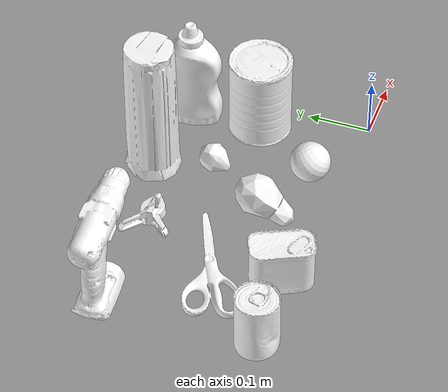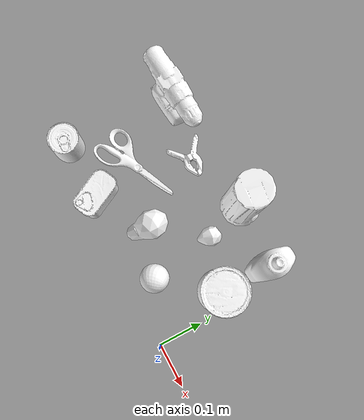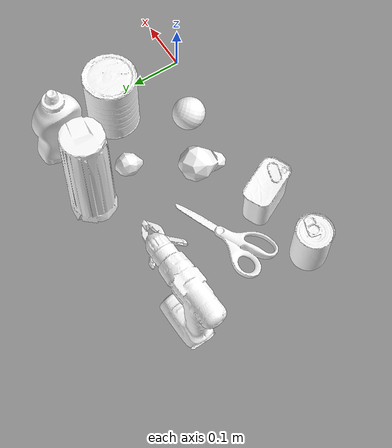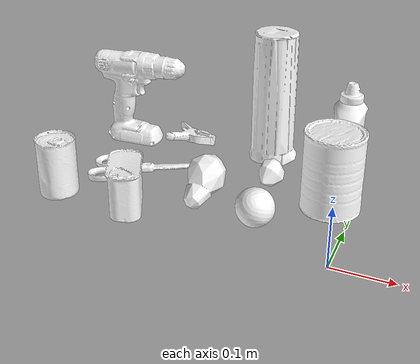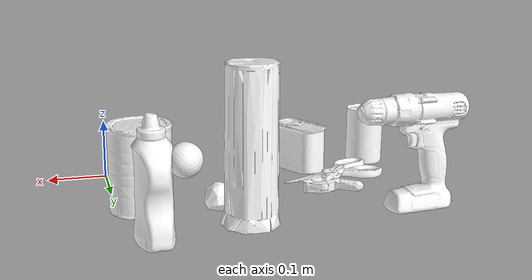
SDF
<sdf version="1.6">
  <world name="default">
  <gravity>0 0 -9.8</gravity>
	<model name="YcbPear">
      <pose frame=''>-0.2361526 0.11794 0.0 0.5355226 0 0</pose>
      <link name="baselink">
        <contact>
          <lateral_friction>0.6</lateral_friction>
          <rolling_friction>0.001</rolling_friction>
          <spinning_friction>0.001</spinning_friction>
          <contact_cfm>0.0</contact_cfm>
          <contact_erp>1.0</contact_erp>
        </contact>
        <inertial>
          <pose frame=''>0 0.005 0.04 0.0 0.0 0.0</pose>
            <mass>0.049</mass>
            <inertia>
                <ixx>1e-3</ixx>
                <ixy>0</ixy>
                <ixz>0</ixz>
                <iyy>1e-3</iyy>
                <iyz>0</iyz>
                <izz>1e-3</izz>
            </inertia>
        </inertial>
        <visual name="visual">
            <geometry>
                <mesh>
                    <scale>1 1 1</scale>
                    <uri>YcbPear/textured_reoriented.obj</uri>
                </mesh>
            </geometry>
            <material>
      				<ambient>1 1 1 1</ambient>
      				<diffuse>1.00000 1.00000 1.000000 1</diffuse>
      				<specular>.5 .5 .5 1</specular>
      				<emissive>0 0 0 0</emissive>
      			</material>
        </visual>
        <collision name="collision">
            <geometry>
                <mesh>
                    <scale>1 1 1</scale>
                    <uri>YcbPear/collision_vhacd.obj</uri>
                </mesh>
            </geometry>
        </collision>
      </link>
  	</model>
	<model name="YcbChipsCan">
      <pose frame=''>-0.19920 0.29439 0. 0 0 -1.7216858</pose>
      <link name="baselink">
        <contact>
          <lateral_friction>0.5</lateral_friction>
          <rolling_friction>0.001</rolling_friction>
          <spinning_friction>0.001</spinning_friction>
          <contact_cfm>0.0</contact_cfm>
          <contact_erp>1.0</contact_erp>
        </contact>
        <inertial>
          <pose frame=''>-0.005 0.01 0.1 0.0 0.0 0.0</pose>
            <mass>0.205</mass>
            <inertia>
                <ixx>1e-3</ixx>
                <ixy>0</ixy>
                <ixz>0</ixz>
                <iyy>1e-3</iyy>
                <iyz>0</iyz>
                <izz>1e-3</izz>
            </inertia>
        </inertial>
        <visual name="visual">
            <geometry>
                <mesh>
                    <scale>1 1 1</scale>
                    <uri>YcbChipsCan/textured.obj</uri>
                </mesh>
            </geometry>
            <material>
      				<ambient>1 1 1 1</ambient>
      				<diffuse>1.00000 1.00000 1.000000 1</diffuse>
      				<specular>.5 .5 .5 1</specular>
      				<emissive>0 0 0 0</emissive>
      			</material>
        </visual>
        <collision name="collision">
            <geometry>
                <mesh>
                    <scale>1 1 1</scale>
                    <uri>YcbChipsCan/collision_vhacd.obj</uri>
                </mesh>
            </geometry>
        </collision>
      </link>
  	</model>
	<model name="YcbMediumClamp">
      <pose frame=''>-0.33023 0.23849 0. 0 0 0</pose>
      <link name="baselink">
        <contact>
          <lateral_friction>0.6</lateral_friction>
          <rolling_friction>0.001</rolling_friction>
          <spinning_friction>0.001</spinning_friction>
          <contact_cfm>0.0</contact_cfm>
          <contact_erp>1.0</contact_erp>
        </contact>
        <inertial>
          <pose frame=''>0.02 0.009 0.04 -0.1 0 0.0</pose>
            <mass>0.059</mass>
            <inertia>
                <ixx>1e-3</ixx>
                <ixy>0</ixy>
                <ixz>0</ixz>
                <iyy>1e-3</iyy>
                <iyz>0</iyz>
                <izz>1e-3</izz>
            </inertia>
        </inertial>
        <visual name="visual">
            <geometry>
                <mesh>
                    <scale>1 1 1</scale>
                    <uri>YcbMediumClamp/textured_reoriented.obj</uri>
                </mesh>
            </geometry>
            <material>
      				<ambient>1 1 1 1</ambient>
      				<diffuse>1.00000 1.00000 1.000000 1</diffuse>
      				<specular>.5 .5 .5 1</specular>
      				<emissive>0 0 0 0</emissive>
      			</material>
        </visual>
        <collision name="collision">
            <geometry>
                <mesh>
                    <scale>1 1 1</scale>
                    <uri>YcbMediumClamp/collision_vhacd.obj</uri>
                </mesh>
            </geometry>
        </collision>
      </link>
  	</model>
	<model name="YcbTennisBall">
      <pose frame=''>-0.1361526 0.05094 0. 0 0 -0.5236056</pose>
      <link name="baselink">
        <contact>
          <lateral_friction>0.8</lateral_friction>
          <rolling_friction>0.001</rolling_friction>
          <spinning_friction>0.001</spinning_friction>
          <contact_cfm>0.0</contact_cfm>
          <contact_erp>1.0</contact_erp>
        </contact>
        <inertial>
          <pose frame=''>0.0 0.005 0.03 0.0 0.0 0.0</pose>
            <mass>0.058</mass>
            <inertia>
                <ixx>1e-3</ixx>
                <ixy>0</ixy>
                <ixz>0</ixz>
                <iyy>1e-3</iyy>
                <iyz>0</iyz>
                <izz>1e-3</izz>
            </inertia>
        </inertial>
        <visual name="visual">
            <geometry>
                <mesh>
                    <scale>1 1 1</scale>
                    <uri>YcbTennisBall/textured_reoriented.obj</uri>
                </mesh>
            </geometry>
            <material>
      				<ambient>1 1 1 1</ambient>
      				<diffuse>1.00000 1.00000 1.000000 1</diffuse>
      				<specular>.5 .5 .5 1</specular>
      				<emissive>0 0 0 0</emissive>
      			</material>
        </visual>
        <collision name="collision">
            <geometry>
                <mesh>
                    <scale>1 1 1</scale>
                    <uri>YcbTennisBall/collision_vhacd.obj</uri>
                </mesh>
            </geometry>
        </collision>
      </link>
  	</model>
	<model name="YcbStrawberry">
      <pose frame=''>-0.1561526 0.20094 0. 0 0 -0.5236056</pose>
      <link name="baselink">
        <contact>
          <lateral_friction>0.5</lateral_friction>
          <rolling_friction>0.001</rolling_friction>
          <spinning_friction>0.001</spinning_friction>
          <contact_cfm>0.0</contact_cfm>
          <contact_erp>1.0</contact_erp>
        </contact>
        <inertial>
          <pose frame=''>-0.005 0.005 0.02 0.0 0.0 0.0</pose>
            <mass>0.018</mass>
            <inertia>
                <ixx>1e-3</ixx>
                <ixy>0</ixy>
                <ixz>0</ixz>
                <iyy>1e-3</iyy>
                <iyz>0</iyz>
                <izz>1e-3</izz>
            </inertia>
        </inertial>
        <visual name="visual">
            <geometry>
                <mesh>
                    <scale>1 1 1</scale>
                    <uri>YcbStrawberry/textured_reoriented.obj</uri>
                </mesh>
            </geometry>
            <material>
      				<ambient>1 1 1 1</ambient>
      				<diffuse>1.00000 1.00000 1.000000 1</diffuse>
      				<specular>.5 .5 .5 1</specular>
      				<emissive>0 0 0 0</emissive>
      			</material>
        </visual>
        <collision name="collision">
            <geometry>
                <mesh>
                    <scale>1 1 1</scale>
                    <uri>YcbStrawberry/collision_vhacd.obj</uri>
                </mesh>
            </geometry>
        </collision>
      </link>
  	</model>
    <model name="YcbMasterChefCan">
        <pose frame=''>-0.0547969 0.161169 0.07 0 0 -1.4993633</pose>
        <link name="baselink">
        <contact>
          <lateral_friction>0.5</lateral_friction>
          <rolling_friction>0.001</rolling_friction>
          <spinning_friction>0.001</spinning_friction>
          <contact_cfm>0.0</contact_cfm>
          <contact_erp>1.0</contact_erp>
        </contact>
          <inertial>
          <pose frame=''>-0.005 0.013 0.0 0.0 0.0 0.0</pose>
              <mass>0.404</mass>
              <inertia>
                  <ixx>1e-3</ixx>
                  <ixy>0</ixy>
                  <ixz>0</ixz>
                  <iyy>1e-3</iyy>
                  <iyz>0</iyz>
                  <izz>1e-3</izz>
              </inertia>
          </inertial>
          <visual name="visual">
              <geometry>
                  <mesh>
                      <scale>1 1 1</scale>
                      <uri>YcbMasterChefCan/textured_simple_reoriented.obj</uri>
                  </mesh>
              </geometry>
              <material>
        				<ambient>1 1 1 1</ambient>
        				<diffuse>1.00000 1.00000 1.000000 1</diffuse>
        				<specular>.5 .5 .5 1</specular>
        				<emissive>0 0 0 0</emissive>
        			</material>
          </visual>
          <collision name="collision">
              <geometry>
                  <mesh>
                      <scale>1 1 1</scale>
                      <uri>YcbMasterChefCan/collision_vhacd.obj</uri>
                  </mesh>
              </geometry>
          </collision>
        </link>
    	</model>
    <model name="YcbScissors">
        <pose frame=''>-0.37456 0.13899 -0.08 0 0 0.5236056</pose>
        <link name="baselink">
        <contact>
          <lateral_friction>0.6</lateral_friction>
          <rolling_friction>0.001</rolling_friction>
          <spinning_friction>0.001</spinning_friction>
          <contact_cfm>0.0</contact_cfm>
          <contact_erp>1.0</contact_erp>
        </contact>
          <inertial>
          <pose frame=''>0.0 -0.005 0.1 0.0 0.0 0.0</pose>
              <mass>0.082</mass>
              <inertia>
                  <ixx>1e-3</ixx>
                  <ixy>0</ixy>
                  <ixz>0</ixz>
                  <iyy>1e-3</iyy>
                  <iyz>0</iyz>
                  <izz>1e-3</izz>
              </inertia>
          </inertial>
          <visual name="visual">
              <geometry>
                  <mesh>
                      <scale>1 1 1</scale>
                      <uri>YcbScissors/textured_simple_reoriented.obj</uri>
                  </mesh>
              </geometry>
              <material>
        				<ambient>1 1 1 1</ambient>
        				<diffuse>1.00000 1.00000 1.000000 1</diffuse>
        				<specular>.5 .5 .5 1</specular>
        				<emissive>0 0 0 0</emissive>
        			</material>
          </visual>
          <collision name="collision">
              <geometry>
                  <mesh>
                      <scale>1 1 1</scale>
                      <uri>YcbScissors/collision_vhacd.obj</uri>
                  </mesh>
              </geometry>
          </collision>
        </link>
    	</model>
      <model name="YcbPowerDrill">
          <pose frame=''>-0.47456 0.25899 0. 0 0 -0.5236056</pose>
          <link name="baselink">
        <contact>
          <lateral_friction>0.9</lateral_friction>
          <rolling_friction>0.001</rolling_friction>
          <spinning_friction>0.001</spinning_friction>
          <contact_cfm>0.0</contact_cfm>
          <contact_erp>1.0</contact_erp>
        </contact>
            <inertial>
          <pose frame=''>-0.005 0.01 0.06 0 0 0.6</pose>
                <mass>0.895</mass>
                <inertia>
                    <ixx>1e-3</ixx>
                    <ixy>0</ixy>
                    <ixz>0</ixz>
                    <iyy>1e-3</iyy>
                    <iyz>0</iyz>
                    <izz>1e-3</izz>
                </inertia>
            </inertial>
            <visual name="visual">
                <geometry>
                    <mesh>
                        <scale>1 1 1</scale>
                        <uri>YcbPowerDrill/textured_simple_reoriented.obj</uri>
                    </mesh>
                </geometry>
                <material>
                  <ambient>1 1 1 1</ambient>
                  <diffuse>1.00000 1.00000 1.000000 1</diffuse>
                  <specular>.5 .5 .5 1</specular>
                  <emissive>0 0 0 0</emissive>
                </material>
            </visual>
            <collision name="collision">
                <geometry>
                    <mesh>
                        <scale>1 1 1</scale>
                        <uri>YcbPowerDrill/collision_vhacd.obj</uri>
                    </mesh>
                </geometry>
            </collision>
          </link>
      </model>
      <model name="YcbPottedMeatCan">
          <pose frame=''>-0.3561526 0.02094 0.047 0 0 -0.5236056</pose>
          <link name="baselink">
        <contact>
          <lateral_friction>0.6</lateral_friction>
          <rolling_friction>0.001</rolling_friction>
          <spinning_friction>0.001</spinning_friction>
          <contact_cfm>0.0</contact_cfm>
          <contact_erp>1.0</contact_erp>
        </contact>
            <inertial>
              <pose frame=''>0 0.012 -0.01 0 0 -0.5</pose>
                <mass>0.370</mass>
                <inertia>
                    <ixx>1e-3</ixx>
                    <ixy>0</ixy>
                    <ixz>0</ixz>
                    <iyy>1e-3</iyy>
                    <iyz>0</iyz>
                    <izz>1e-3</izz>
                </inertia>
            </inertial>
            <visual name="visual">
                <geometry>
                    <mesh>
                        <scale>1 1 1</scale>
                        <uri>YcbPottedMeatCan/textured_simple_reoriented.obj</uri>
                    </mesh>
                </geometry>
                <material>
                  <ambient>1 1 1 1</ambient>
                  <diffuse>1.00000 1.00000 1.000000 1</diffuse>
                  <specular>.5 .5 .5 1</specular>
                  <emissive>0 0 0 0</emissive>
                </material>
            </visual>
            <collision name="collision">
                <geometry>
                    <mesh>
                        <scale>1 1 1</scale>
                        <uri>YcbPottedMeatCan/collision_vhacd.obj</uri>
                    </mesh>
                </geometry>
            </collision>
          </link>
      </model>
      <model name="YcbTomatoSoupCan">
          <pose frame=''>-0.4861526 0.02094 0.06 0 0 -0.5236056</pose>
          <link name="baselink">
        <contact>
          <lateral_friction>0.6</lateral_friction>
          <rolling_friction>0.001</rolling_friction>
          <spinning_friction>0.001</spinning_friction>
          <contact_cfm>0.0</contact_cfm>
          <contact_erp>1.0</contact_erp>
        </contact>
            <inertial>
          <pose frame=''>0 0.0 -0.02 0.0 0.0 0.0</pose>
                <mass>0.349</mass>
                <inertia>
                    <ixx>1e-3</ixx>
                    <ixy>0</ixy>
                    <ixz>0</ixz>
                    <iyy>1e-3</iyy>
                    <iyz>0</iyz>
                    <izz>1e-3</izz>
                </inertia>
            </inertial>
            <visual name="visual">
                <geometry>
                    <mesh>
                        <scale>1 1 1</scale>
                        <uri>YcbTomatoSoupCan/textured_simple_reoriented.obj</uri>
                    </mesh>
                </geometry>
                <material>
                  <ambient>1 1 1 1</ambient>
                  <diffuse>1.00000 1.00000 1.000000 1</diffuse>
                  <specular>.5 .5 .5 1</specular>
                  <emissive>0 0 0 0</emissive>
                </material>
            </visual>
            <collision name="collision">
                <geometry>
                    <mesh>
                        <scale>1 1 1</scale>
                        <uri>YcbTomatoSoupCan/collision_vhacd.obj</uri>
                    </mesh>
                </geometry>
            </collision>
          </link>
      </model>
      <model name="YcbMustardBottle">
          <pose frame=''>-0.0361526 0.29094 0.07 0 0 -1.5707963</pose>
          <link name="baselink">
        <contact>
          <lateral_friction>0.8</lateral_friction>
          <rolling_friction>0.001</rolling_friction>
          <spinning_friction>0.001</spinning_friction>
          <contact_cfm>0.0</contact_cfm>
          <contact_erp>1.0</contact_erp>
        </contact>
            <inertial>
          <pose frame=''>0.005 -0.005 -0.015 0 0 0.1</pose>
                <mass>0.603</mass>
                <inertia>
                    <ixx>1e-3</ixx>
                    <ixy>0</ixy>
                    <ixz>0</ixz>
                    <iyy>1e-3</iyy>
                    <iyz>0</iyz>
                    <izz>1e-3</izz>
                </inertia>
            </inertial>
            <visual name="visual">
                <geometry>
                    <mesh>
                        <scale>1 1 1</scale>
                        <uri>YcbMustardBottle/textured_simple_reoriented.obj</uri>
                    </mesh>
                </geometry>
                <material>
                  <ambient>1 1 1 1</ambient>
                  <diffuse>1.00000 1.00000 1.000000 1</diffuse>
                  <specular>.5 .5 .5 1</specular>
                  <emissive>0 0 0 0</emissive>
                </material>
            </visual>
            <collision name="collision">
                <geometry>
                    <mesh>
                        <scale>1 1 1</scale>
                        <uri>YcbMustardBottle/collision_vhacd.obj</uri>
                    </mesh>
                </geometry>
            </collision>
          </link>
      </model>
  </world>
</sdf>
